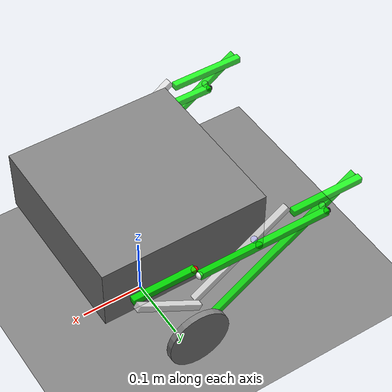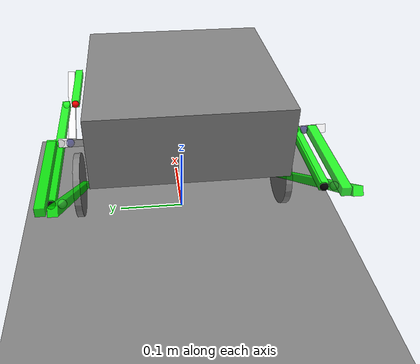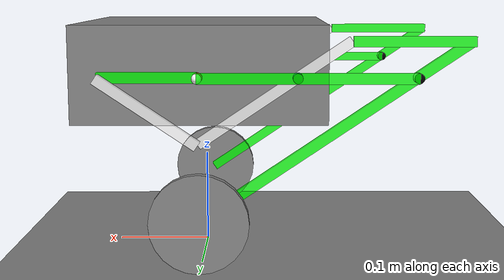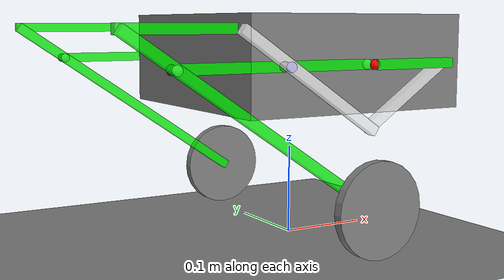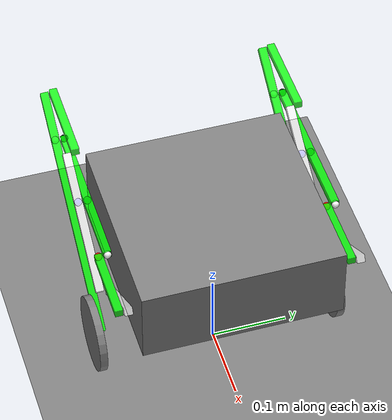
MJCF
<mujoco>
    <compiler angle="radian" meshdir="meshes" autolimits="true" />
    <option timestep="0.002" gravity="0 0 -9.81" integrator="implicitfast" density="1.225" viscosity="1.8e-5" />
    <asset>
        <mesh name="tetrahedron" vertex="0 0 0 1 0 0 0 1 0 0 0 1" />
        <texture type="skybox" builtin="gradient" rgb1=".1 .1 .1" rgb2=".9 .9 .9" width="512" height="512"/>
        <texture name="plane" type="2d" builtin="checker" rgb1=".1 .1 .1" rgb2=".9 .9 .9" width="512" height="512" mark="cross" markrgb=".8 .8 .8" />
        <material name="plane" reflectance="0.3" texture="plane" texrepeat="1 1" texuniform="true" />
    </asset>

    <default>
        <joint damping="0.1"/>

        <default class="wheel">
        <joint damping="0.1"/>
        </default>

    </default>

    <worldbody>
        <geom type="plane" material="plane" pos="0 0 0" size="0 0 .25"/>
        <light directional="true" dir="0 0 -1" diffuse="1 1 1" specular=".5 .5 .5"/>

        <body name="body" pos="0 0 .2">
        <freejoint/>

        <body name="box" pos="0 0 0">
            <geom type="box" size="0.13 0.13 0.05" mass="10.0"/>
            <site type="box" name="imu" size=".01" rgba="1 0 0 1"/>
        </body>

        <body name="left" pos="0 0.15 0">
            <geom type="sphere" size="0.001" mass="0.001" rgba="0 0 0 0"/>
            <body name="l1_L" pos="0 0 0">
                <geom type="box" size=".005" fromto="0 0 0 0.098 0 0" rgba="0 1 0 .8" pos="0 0 0" mass="0.1459"/>
                <joint type="hinge" name="joint_l1_L" pos="0 0 0" axis="0 1 0"/>
                <site type="sphere" name="l1_L" size=".005" pos="0 0 0" rgba="1 0 0 1"/>

                <body name="l2_L" pos="0.098 0.012 0">
                    <joint type="hinge" name="joint_l2_L" pos="0 0 0" axis="0 1 0"/>
                    <geom type="box" size="0.005" fromto="0 0 0 -0.098 0 -0.06573" rgba="1 1 1 .8" mass="0.098"/>

                    <body name="l3_L" pos="-0.098 -0.012 -0.06573">
                    <joint type="hinge" name="joint_l3_L" pos="0 0 0" axis="0 1 0"/>
                    <geom type="box" size="0.005" fromto="0 0 0 -0.15115 0 0.10138" rgba="1 1 1 .8" mass="0.0696"/>
                    <site type="sphere" name="l3_L" size=".005" pos="-0.098 0 0.06573" rgba="0 0 1 1"/>

                    <body name="l4_L" pos="-0.15115 0.012 0.10138">
                    <joint type="hinge" name="joint_l4_L" pos="0 0 0" axis="0 1 0"/>
                    <geom type="box" size="0.005" fromto="0 0 0 -0.117 0 0" rgba="0 1 0 .8" mass="0.0600"/>

                    <body name="l5_L" pos="-0.117 -0.012 0">
                    <joint type="hinge" name="joint_l5_L" pos="0 0 0" axis="0 1 0"/>
                    <geom type="box" size="0.005" fromto="0 0 0 0.26742 0 -0.17936" rgba="0 1 0 .8" mass="0.2974"/>
                    <site type="sphere" name="l5_L" size=".005" pos="0.05315 0 -0.03565" rgba="1 1 1 1"/>

                    <body name="wheel_L" pos="0.26742 0.01 -0.17936">
                        <geom type="cylinder" size="0.05 0.005" mass="0.5" euler="1.57 0 0"/>
                        <joint type="hinge" name="joint_wheel_L" pos="0 0 0" axis="0 1 0" class="wheel"/>
                    </body>

                    </body>
                    </body>
                    </body>
                    </body>
            </body>

            <body name="l6" pos="0 0.012 0">
              <joint type="hinge" name="joint_l6_L" pos="0 0 0" axis="0 1 0"/>
              <geom type="box" size="0.005" fromto="0 0 0 -0.215 0 0" rgba="0 1 0 .8" mass="0.3093"/>
              <site type="sphere" name="l6r_L" size=".005" pos="0 0 0" rgba="1 1 1 1"/>
              <site type="sphere" name="l6m_L" size=".005" pos="-0.098 0 0" rgba="0 0 0 1"/>
              <site type="sphere" name="l6l_L" size=".005" pos="-0.215 0 0" rgba="0 0 0 1"/>
            </body>

        </body>

        <body name="right" pos="0 -0.15 0">
            <geom type="sphere" size="0.001" mass="0.001" rgba="0 0 0 0"/>
            <body name="l1_R" pos="0 0 0">
                <geom type="box" size=".005" fromto="0 0 0 0.098 0 0" rgba="0 1 0 .8" pos="0 0 0" mass="0.1459"/>
                <joint type="hinge" name="joint_l1_R" pos="0 0 0" axis="0 -1 0"/>
                <site type="sphere" name="l1_R" size=".005" pos="0 0 0" rgba="1 0 0 1"/>

                <body name="l2_R" pos="0.098 0.012 0">
                    <joint type="hinge" name="joint_l2_R" pos="0 0 0" axis="0 1 0"/>
                    <geom type="box" size="0.005" fromto="0 0 0 -0.098 0 -0.06573" rgba="1 1 1 .8" mass="0.098"/>

                    <body name="l3_R" pos="-0.098 -0.012 -0.06573">
                    <joint type="hinge" name="joint_l3_R" pos="0 0 0" axis="0 1 0"/>
                    <geom type="box" size="0.005" fromto="0 0 0 -0.15115 0 0.10138" rgba="1 1 1 .8" mass="0.0696"/>
                    <site type="sphere" name="l3_R" size=".005" pos="-0.098 0 0.06573" rgba="0 0 1 1"/>

                    <body name="l4_R" pos="-0.15115 0.012 0.10138">
                    <joint type="hinge" name="joint_l4_R" pos="0 0 0" axis="0 1 0"/>
                    <geom type="box" size="0.005" fromto="0 0 0 -0.117 0 0" rgba="0 1 0 .8" mass="0.0600"/>

                    <body name="l5_R" pos="-0.117 -0.012 0">
                    <joint type="hinge" name="joint_l5_R" pos="0 0 0" axis="0 1 0"/>
                    <geom type="box" size="0.005" fromto="0 0 0 0.26742 0 -0.17936" rgba="0 1 0 .8" mass="0.2974"/>
                    <site type="sphere" name="l5_R" size=".005" pos="0.05315 0 -0.03565" rgba="1 1 1 1"/>

                    <body name="wheel_R" pos="0.26742 -0.01 -0.17936">
                        <geom type="cylinder" size="0.05 0.005" mass="0.5" euler="1.57 0 0"/>
                        <joint type="hinge" name="joint_wheel_R" pos="0 0 0" axis="0 -1 0" class="wheel"/>
                    </body>

                    </body>
                    </body>
                    </body>
                    </body>
            </body>

            <body name="l6_R" pos="0 0.012 0">
              <joint type="hinge" name="joint_l6_R" pos="0 0 0" axis="0 -1 0"/>
              <geom type="box" size="0.005" fromto="0 0 0 -0.215 0 0" rgba="0 1 0 .8" mass="0.3093"/>
              <site type="sphere" name="l6r_R" size=".005" pos="0 0 0" rgba="1 1 1 1"/>
              <site type="sphere" name="l6m_R" size=".005" pos="-0.098 0 0" rgba="0 0 0 1"/>
              <site type="sphere" name="l6l_R" size=".005" pos="-0.215 0 0" rgba="0 0 0 1"/>
            </body>

        </body>

        </body>

    </worldbody>

    <equality>
         <connect site1="l3_L" site2="l6m_L" solref="0.002 1"/>
         <connect site1="l5_L" site2="l6l_L" solref="0.002 1"/>
         <connect site1="l3_R" site2="l6m_R" solref="0.002 1"/>
         <connect site1="l5_R" site2="l6l_R" solref="0.002 1"/>
    </equality>

    <actuator>
        <motor name="left_front" ctrlrange="-40 40" forcerange="-10 10" joint="joint_l1_L"/>
        <motor name="left_back" ctrlrange="-40 40" forcerange="-10 10" joint="joint_l6_L"/>
        <motor name="left_wheel" ctrlrange="-40 40" forcerange="-5 5" joint="joint_wheel_L"/>
        <motor name="right_front" ctrlrange="-40 40" forcerange="-10 10" joint="joint_l1_R"/>
        <motor name="right_back" ctrlrange="-40 40" forcerange="-10 10" joint="joint_l6_R"/>
        <motor name="right_wheel" ctrlrange="-40 40" forcerange="-5 5" joint="joint_wheel_R"/>
    </actuator>

    <sensor>
        <framequat name="orientation" objtype="site" objname="imu"/>
        <accelerometer name="acc" site="imu"/>
        <gyro name="gyro" site="imu"/>

        <jointpos name="joint_l1_L" joint="joint_l1_L"/>
        <jointpos name="joint_l6_L" joint="joint_l6_L"/>
        <jointpos name="joint_wheel_L" joint="joint_wheel_L"/>
        <jointpos name="joint_l1_R" joint="joint_l1_R"/>
        <jointpos name="joint_l6_R" joint="joint_l6_R"/>
        <jointpos name="joint_wheel_R" joint="joint_wheel_R"/>
    </sensor>
</mujoco>
